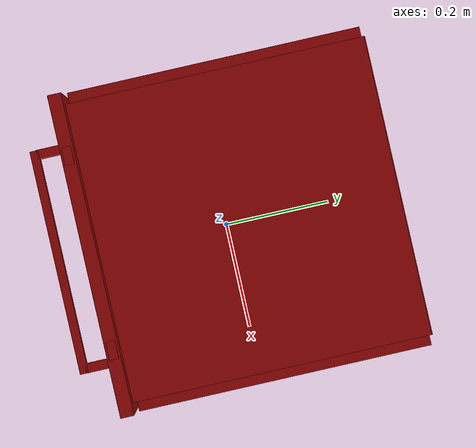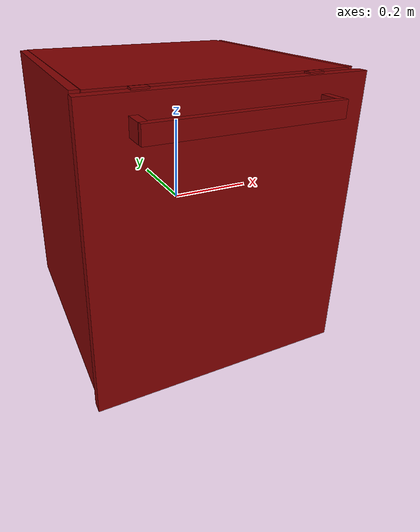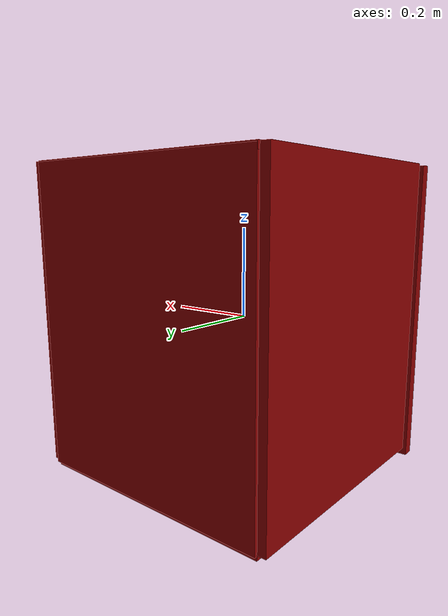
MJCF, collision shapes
<mujoco model="model">
  <compiler angle="radian"/>
  <asset>
    <mesh file="visuals/Body001.obj" name="Body001_vis"/>
    <mesh file="visuals/Button001.obj" name="Button001_vis"/>
    <mesh file="visuals/Button002.obj" name="Button002_vis"/>
    <mesh file="visuals/Container001.obj" name="Container001_vis"/>
    <mesh file="visuals/Container002.obj" name="Container002_vis"/>
    <mesh file="visuals/Door001.obj" name="Door001_vis"/>
    <texture file="visuals/T_BC001.png" name="Body001_material" type="2d"/>
    <material name="Body001_material" rgba="1 1 1 1.0" texture="Body001_material" shininess="0.581818163394928" specular="0.3103448502657381"/>
    <texture file="visuals/T_BC001.png" name="Container001_material" type="2d"/>
    <material name="Container001_material" rgba="1 1 1 1.0" texture="Container001_material" shininess="0.581818163394928" specular="0.3103448502657381"/>
    <texture file="visuals/T_BC001.png" name="Container002_material" type="2d"/>
    <material name="Container002_material" rgba="1 1 1 1.0" texture="Container002_material" shininess="0.581818163394928" specular="0.3103448502657381"/>
    <texture file="visuals/T_BC001.png" name="Door001_material" type="2d"/>
    <material name="Door001_material" rgba="1 1 1 1.0" texture="Door001_material" shininess="0.581818163394928" specular="0.3103448502657381"/>
    <texture file="visuals/T_BC001.png" name="Button001_material" type="2d"/>
    <material name="Button001_material" rgba="1 1 1 1.0" texture="Button001_material" shininess="0.581818163394928" specular="0.3103448502657381"/>
    <texture file="visuals/T_BC001.png" name="Button002_material" type="2d"/>
    <material name="Button002_material" rgba="1 1 1 1.0" texture="Button002_material" shininess="0.581818163394928" specular="0.3103448502657381"/>
  </asset>
  <default>
    <default class="visual">
      <geom conaffinity="0" contype="0" group="1" type="mesh"/>
    </default>
    <default class="collision">
      <geom group="0" rgba="0.5 0 0 0.5"/>
    </default>
    <default class="spawn">
      <geom group="0" rgba="1 1 1 0.5" contype="0" conaffinity="0"/>
      <site group="0" rgba="1 1 1 0.5"/>
    </default>
    <default class="region">
      <geom group="1" conaffinity="0" contype="0" rgba="0 1 0 0"/>
    </default>
  </default>
  <worldbody>
    <body>
      <body name="object">
        <geom mesh="Body001_vis" type="mesh" solimp="0.998 0.998 0.001" solref="0.001 1" density="100" friction="0.95 0.3 0.1" class="visual" material="Body001_material"/>
        <geom class="collision" type="box" pos="-0.000362 0.284033 0.008072" size="0.2814469039440155 0.04149303212761879 0.32935720682144165" quat="1.0 0.0 0.0 0.0"/>
        <geom class="collision" type="box" pos="-0.000362 0.042166 0.333211" size="0.28145864605903625 0.28169476985931396 0.006788893602788448" quat="1.0 0.0 0.0 0.0"/>
        <geom class="collision" type="box" pos="-0.287891 0.043826 0.009849" size="0.012865383177995682 0.27527016401290894 0.32937052845954895" quat="1.0 0.0 0.0 0.0"/>
        <geom class="collision" type="box" pos="0.285382 0.043826 0.009849" size="0.013918799348175526 0.27527016401290894 0.32937052845954895" quat="1.0 0.0 0.0 0.0"/>
        <geom class="collision" type="box" pos="-0.000362 0.046674 -0.323618" size="0.2814862132072449 0.2723296284675598 0.006789403036236763" quat="1.0 0.0 0.0 0.0"/>
        <geom class="collision" type="box" pos="-0.241681 0.047279 -0.022958" size="0.0020390255376696587 0.2718173563480377 0.24740184843540192" quat="1.0 0.0 0.0 0.0"/>
        <geom class="collision" type="box" pos="0.229219 0.047279 -0.022958" size="0.0020390283316373825 0.2718173563480377 0.24740184843540192" quat="1.0 0.0 0.0 0.0"/>
        <geom class="collision" type="box" pos="-0.007086 0.047279 0.233003" size="0.22424153983592987 0.2718193829059601 0.00203908234834671" quat="1.0 0.0 0.0 0.0"/>
        <geom class="collision" type="box" pos="-0.007086 0.047279 -0.276355" size="0.22424082458019257 0.2718186378479004 0.00203908234834671" quat="1.0 0.0 0.0 0.0"/>
        <body name="Container001">
          <joint axis="0.0 -1.0 0.0" pos="-0.005674 0.019578 0.091830" limited="true" name="Container001_joint" range="0.0 0.1" type="slide" damping="1" frictionloss="1" armature=".01" stiffness="0.05"/>
          <geom mesh="Container001_vis" type="mesh" solimp="0.998 0.998 0.001" solref="0.001 1" density="100" friction="0.95 0.3 0.1" class="visual" material="Container001_material"/>
          <geom class="collision" type="box" pos="-0.006242 -0.188924 0.099031" size="0.20599940419197083 0.006409452296793461 0.09109634160995483" quat="1.0 0.0 0.0 0.0"/>
          <geom class="collision" type="box" pos="-0.006242 0.223797 0.099031" size="0.20788580179214478 0.0064094350673258305 0.09110131859779358" quat="1.0 0.0 0.0 0.0"/>
          <geom class="collision" type="box" pos="-0.222044 0.013490 0.099031" size="0.006625238806009293 0.20031298696994781 0.09109634160995483" quat="1.0 0.0 0.0 0.0"/>
          <geom class="collision" type="box" pos="0.211774 0.013490 0.099031" size="0.006625238806009293 0.20031243562698364 0.09109634160995483" quat="1.0 0.0 0.0 0.0"/>
          <geom class="collision" type="box" pos="-0.004542 0.009654 0.007291" size="0.20721404254436493 0.2010432481765747 0.006625238806009293" quat="1.0 0.0 0.0 0.0"/>
        </body>
        <body name="Container002">
          <joint axis="0.0 -1.0 0.0" pos="-0.006457 0.016256 -0.140515" limited="true" name="Container002_joint" range="0.0 0.1" type="slide" damping="1" frictionloss="1" armature=".01" stiffness="0.05"/>
          <geom mesh="Container002_vis" type="mesh" solimp="0.998 0.998 0.001" solref="0.001 1" density="100" friction="0.95 0.3 0.1" class="visual" material="Container002_material"/>
          <geom class="collision" type="box" pos="-0.006242 -0.194502 -0.134830" size="0.2060052901506424 0.0064088026992976665 0.09622746706008911" quat="1.0 0.0 0.0 0.0"/>
          <geom class="collision" type="box" pos="-0.006242 0.223797 -0.134830" size="0.2078830748796463 0.006409085355699062 0.09623146057128906" quat="1.0 0.0 0.0 0.0"/>
          <geom class="collision" type="box" pos="-0.222044 0.013490 -0.134830" size="0.006625238806009293 0.20031020045280457 0.09623120725154877" quat="1.0 0.0 0.0 0.0"/>
          <geom class="collision" type="box" pos="0.211774 0.013490 -0.134830" size="0.006625238806009293 0.2003096491098404 0.09623095393180847" quat="1.0 0.0 0.0 0.0"/>
          <geom class="collision" type="box" pos="-0.004542 0.009654 -0.231737" size="0.20721404254436493 0.20103950798511505 0.006998201832175255" quat="1.0 0.0 0.0 0.0"/>
        </body>
        <body name="Door001">
          <joint axis="1.0 0.0 0.0" pos="0.000000 -0.242138 -0.339057" limited="true" name="Door001_joint" range="0.0 0.5235987755982988" type="hinge" damping="1" frictionloss="1" armature=".01" stiffness="0.6" springref="-3"/>
          <geom mesh="Door001_vis" type="mesh" solimp="0.998 0.998 0.001" solref="0.001 1" density="100" friction="0.95 0.3 0.1" class="visual" material="Door001_material"/>
          <geom class="collision" type="box" pos="-0.000362 -0.317014 0.277566" size="0.21125565469264984 0.007914526388049126 0.01899431087076664" quat="1.0 0.0 0.0 0.0"/>
          <geom class="collision" type="box" pos="0.202214 -0.289952 0.277566" size="0.008816225454211235 0.023114316165447235 0.01899433508515358" quat="1.0 0.0 0.0 0.0"/>
          <geom class="collision" type="box" pos="-0.203539 -0.289952 0.277566" size="0.00881623663008213 0.02311437763273716 0.01899435929954052" quat="1.0 0.0 0.0 0.0"/>
          <geom class="collision" type="box" pos="0.000182 -0.255905 -0.001697" size="0.3047434687614441 0.012794197537004948 0.3375413715839386" quat="1.0 0.0 0.0 0.0"/>
          <body name="Button001">
            <joint axis="0.0 0.0 -1.0" pos="0.179054 -0.256009 0.337635" limited="true" name="Button001_joint" range="0.0 0.005" type="slide" damping="1" frictionloss="1" armature=".01" stiffness="0.3" springref="-1"/>
            <geom mesh="Button001_vis" type="mesh" solimp="0.998 0.998 0.001" solref="0.001 1" density="100" friction="0.95 0.3 0.1" class="visual" material="Button001_material"/>
            <geom class="collision" type="box" pos="0.178934 -0.255890 0.339228" size="0.017101047560572624 0.00900245737284422 0.0018390847835689783" quat="1.0 0.0 0.0 0.0"/>
          </body>
          <body name="Button002">
            <joint axis="0.0 0.0 -1.0" pos="-0.187990 -0.256009 0.337635" limited="true" name="Button002_joint" range="0.0 0.005" type="slide" damping="1" frictionloss="1" armature=".01" stiffness="0.3" springref="-1"/>
            <geom mesh="Button002_vis" type="mesh" solimp="0.998 0.998 0.001" solref="0.001 1" density="100" friction="0.95 0.3 0.1" class="visual" material="Button002_material"/>
            <geom class="collision" type="box" pos="-0.187911 -0.255890 0.339228" size="0.017101047560572624 0.00900245737284422 0.0018390847835689783" quat="1.0 0.0 0.0 0.0"/>
          </body>
        </body>
        <geom class="region" name="reg_main" type="box" pos="0.0 0.026174000000000003 -0.0030275000000000163" size="0.303818 0.29782600000000004 0.3379065"/>
        <geom class="region" name="reg_int" type="box" pos="-0.005382000000000012 0.0216755 -0.02180900000000001" size="0.233972 0.21766950000000002 0.251882"/>
      </body>
    </body>
  </worldbody>
  <actuator>
    <motor name="Container001_joint_actuator" joint="Container001_joint" gear="10"/>
    <motor name="Container002_joint_actuator" joint="Container002_joint" gear="10"/>
    <motor name="Door001_joint_actuator" joint="Door001_joint" gear="50"/>
    <motor name="Button001_joint_actuator" joint="Button001_joint" gear="0.5"/>
    <motor name="Button002_joint_actuator" joint="Button002_joint" gear="0.5"/>
  </actuator>
</mujoco>
